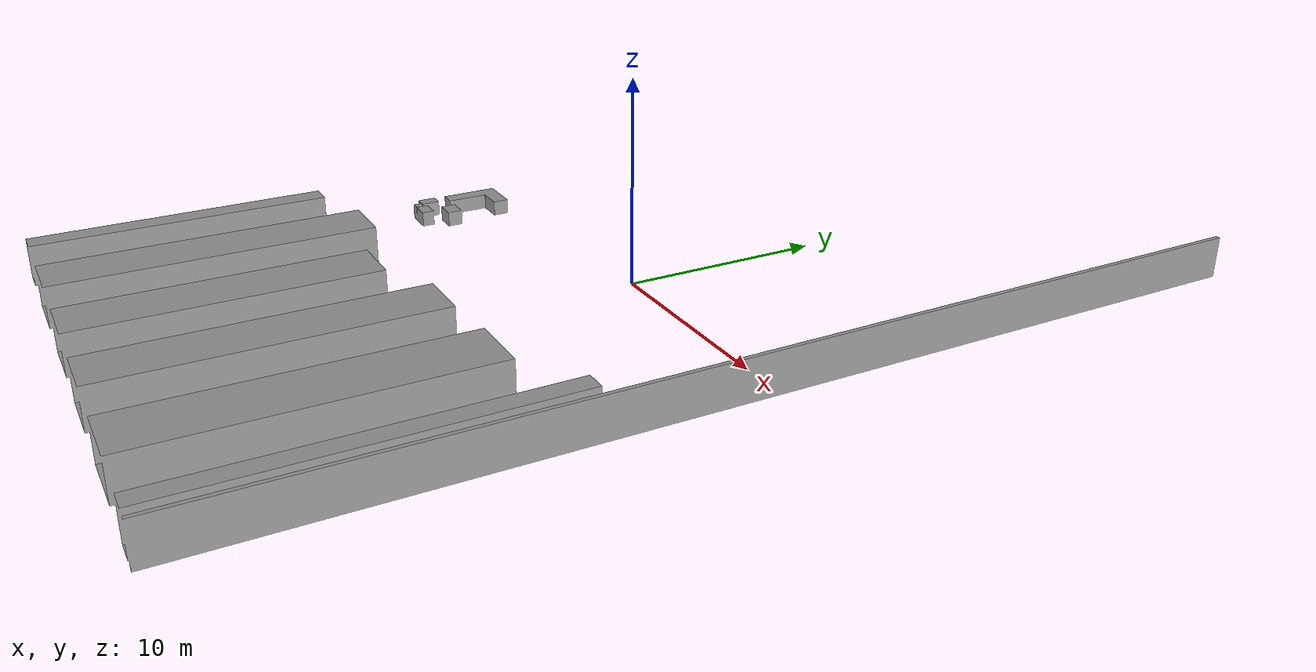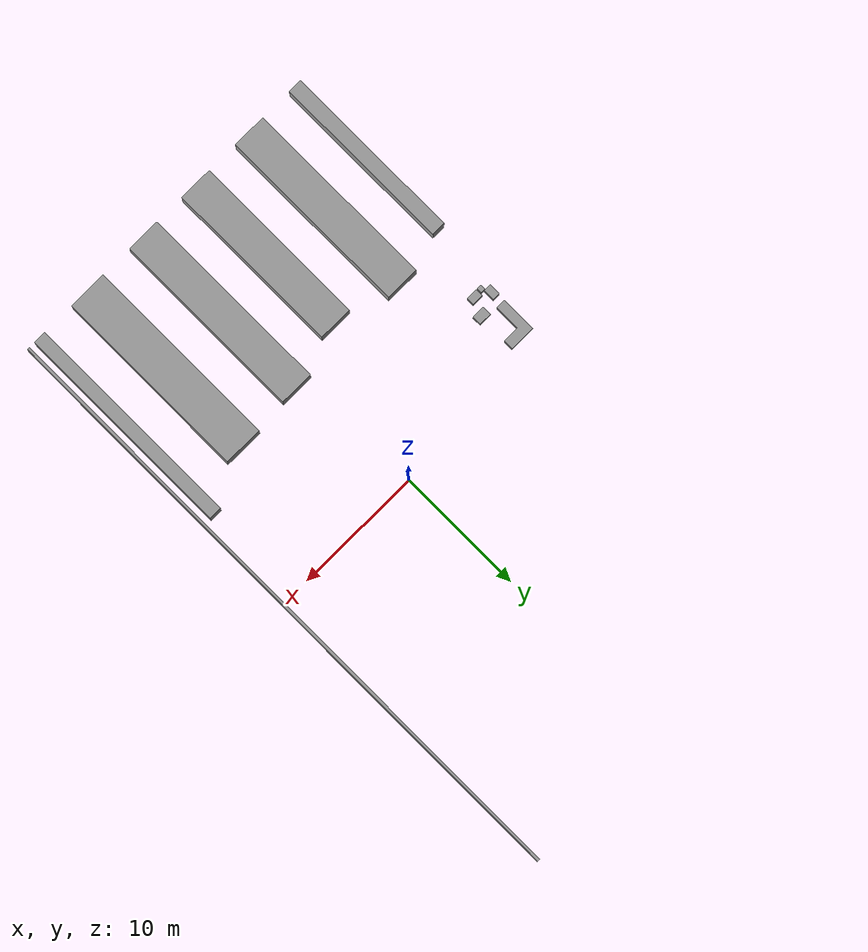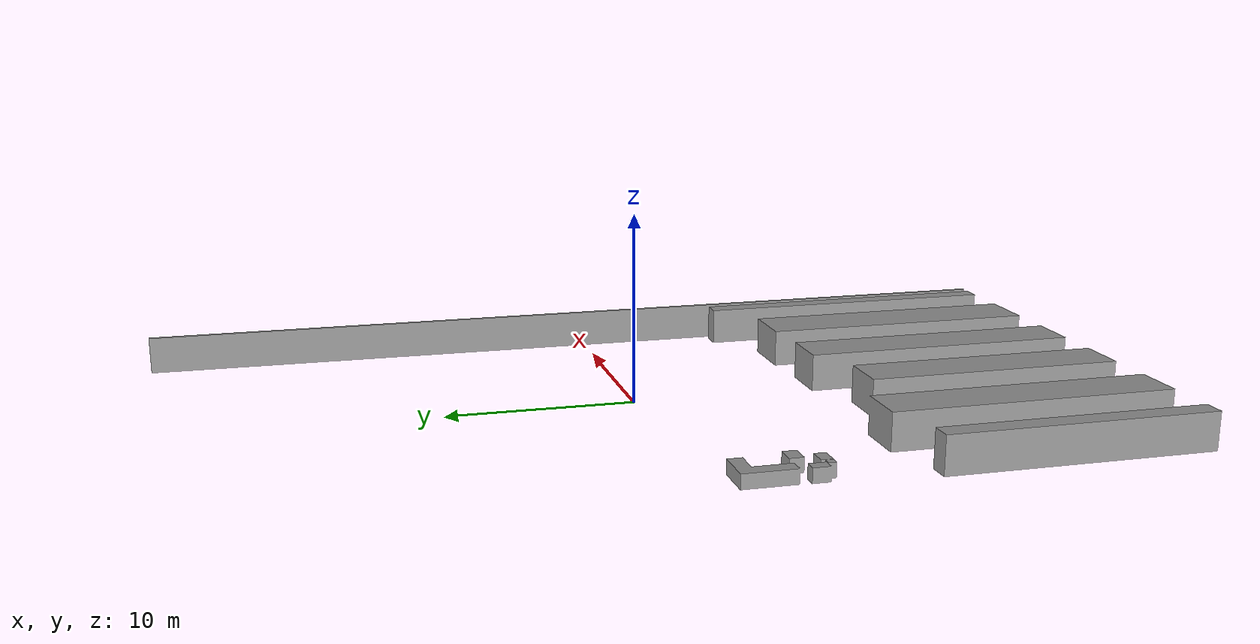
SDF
<?xml version="1.0"?>
<!-- GENERADO por scripts/crop_world.py a partir de worlds/rubber_factory.sdf:
     ventana 30 x 50 m centrada en (-12.79, 58.5) del mundo original,
     trasladada al origen. No editar a mano. -->
<sdf version="1.8">
  <model name="rubber_factory_crop">
    <static>true</static>
    <link name="link">
      <collision name="emka_factory__collision">
        <geometry><mesh><uri>model://rubber_factory_crop/meshes/emka_factory__link_1__collision.stl</uri></mesh></geometry>
        <laser_retro>0</laser_retro><max_contacts>10</max_contacts><surface>
          <friction>
            <ode>
              <mu>1</mu>
              <mu2>1</mu2>
              <fdir1>0 0 0</fdir1>
              <slip1>0</slip1>
              <slip2>0</slip2>
            </ode>
            <torsional>
              <coefficient>1</coefficient>
              <patch_radius>0</patch_radius>
              <surface_radius>0</surface_radius>
              <use_patch_radius>1</use_patch_radius>
              <ode>
                <slip>0</slip>
              </ode>
            </torsional>
          </friction>
          <bounce>
            <restitution_coefficient>0</restitution_coefficient>
            <threshold>1e+06</threshold>
          </bounce>
          <contact>
            <collide_without_contact>0</collide_without_contact>
            <collide_without_contact_bitmask>1</collide_without_contact_bitmask>
            <collide_bitmask>1</collide_bitmask>
            <ode>
              <soft_cfm>0</soft_cfm>
              <soft_erp>0.2</soft_erp>
              <kp>1e+13</kp>
              <kd>1</kd>
              <max_vel>0.01</max_vel>
              <min_depth>0</min_depth>
            </ode>
            <bullet>
              <split_impulse>1</split_impulse>
              <split_impulse_penetration_threshold>-0.01</split_impulse_penetration_threshold>
              <soft_cfm>0</soft_cfm>
              <soft_erp>0.2</soft_erp>
              <kp>1e+13</kp>
              <kd>1</kd>
            </bullet>
          </contact>
        </surface>
      </collision>
      <visual name="emka_factory__visual">
        <geometry><mesh><uri>model://rubber_factory_crop/meshes/emka_factory__link_1__visual__vis.stl</uri></mesh></geometry>
        <material>
          <lighting>1</lighting>
          <script>
            <uri>file://media/materials/scripts/gazebo.material</uri>
            <name>Gazebo/Grey</name>
          </script>
          <shader type="vertex">
            <normal_map>__default__</normal_map>
          </shader>
        </material><transparency>0</transparency><cast_shadows>1</cast_shadows>
      </visual>
    </link>
  </model>
</sdf>
